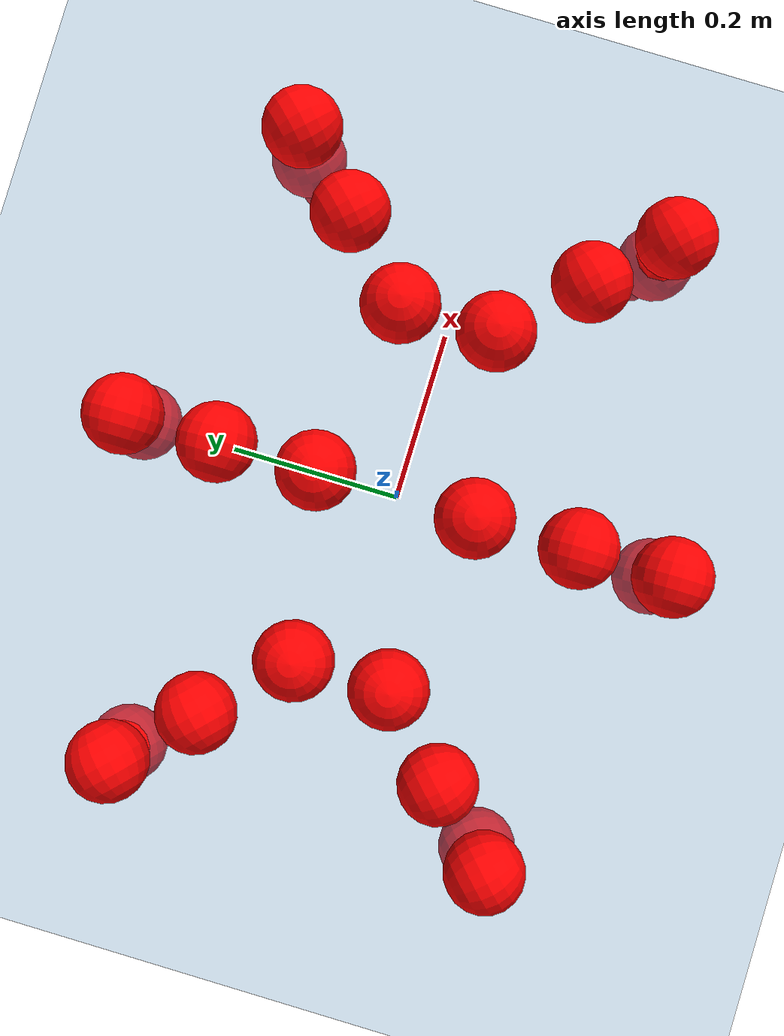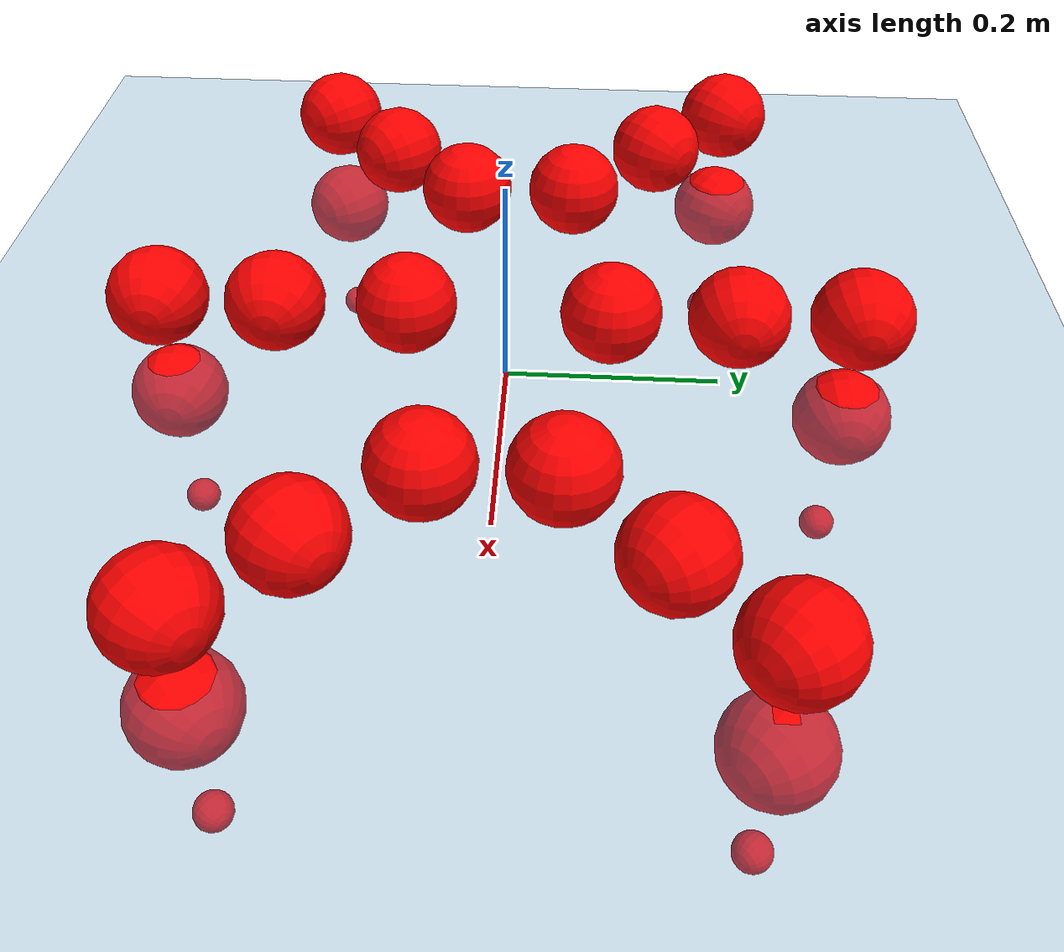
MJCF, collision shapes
<mujoco model="Golem">
  <compiler angle="radian" assetdir="assets" balanceinertia="true" inertiafromgeom="false"/>

  <option timestep="0.005" density="1.2" viscosity="2e-05"/>

  <size nkey="1"/>

  <visual>
    <quality shadowsize="8192"/>
    <map shadowclip="0.5"/>
  </visual>

  <default>
    <default class="/">
      <joint armature="0.01" damping="0.01" frictionloss="0.01"/>
      <geom contype="0" conaffinity="0" group="1" solref="-1000 -80"/>
      <site size="0.01 0.005 0.005" group="5"/>
      <general forcelimited="true" biastype="affine" gainprm="25" biasprm="0 -25 -0.5"/>
      <default class="visual">
        <geom type="mesh" group="2"/>
      </default>
      <default class="collision">
        <geom group="3"/>
      </default>
      <default class="foot">
        <geom size="0.01 0 0" condim="6" group="4" priority="1" solimp="0.015 1 0.01"/>
      </default>
      <default class="reward_collision_sphere">
        <geom group="5" rgba="1 0 0 1"/>
      </default>
    </default>
  </default>

  <asset>
    <texture type="skybox" colorspace="auto" name="//unnamed_texture_0" builtin="gradient" rgb1="0.95 0.95 0.95" rgb2="0.95 0.95 0.95" width="100" height="600"/>
    <texture type="2d" colorspace="auto" name="texplane" builtin="checker" rgb1="0.345 0.575 0.748" rgb2="0.345 0.575 0.748" markrgb="1 1 1" width="512" height="512"/>
    <material name="MatPlane" class="/" texture="texplane" texuniform="true" texrepeat="2 2" specular="0.9"/>
    <mesh name="body" class="/" file="body.stl" scale="0.001 0.001 0.001"/>
    <mesh name="coxa" class="/" file="coxa.stl" scale="0.001 0.001 0.001"/>
    <mesh name="femur" class="/" file="femur.stl" scale="0.001 0.001 0.001"/>
    <mesh name="tibia" class="/" file="tibia.stl" scale="0.001 0.001 0.001"/>
    <mesh name="tarsus" class="/" file="tarsus.stl" scale="0.001 0.001 0.001"/>
  </asset>

  <worldbody>
    <geom name="floor" class="/" size="100 100 0.125" type="plane" group="0" material="MatPlane"/>
    <light name="toplight_shadow" class="/" pos="0 0 5" dir="0.0990148 0.0990148 -0.990148" type="directional" ambient="0.04 0.04 0.04" diffuse="0.55 0.55 0.55" specular="0.12 0.12 0.12"/>
    <light name="toplight_fill" class="/" pos="0 0 5" dir="0.0990148 0.0990148 -0.990148" type="directional" castshadow="false" ambient="0.04 0.04 0.04" diffuse="0.3 0.3 0.3" specular="0.08 0.08 0.08"/>
    <body name="trunk" pos="-0.000218211 0.00254584 0.00270128" quat="1 0.000124128 5.48243e-05 3.53598e-05">
      <inertial pos="0.00249818 0.000858567 -0.00303773" quat="0.999988 -0.00490543 0.000698816 0.000124122" mass="5.95969" diaginertia="0.0419115 0.0112599 0.0180835"/>
      <joint name="//unnamed_joint_0" type="free"/>
      <geom name="//unnamed_geom_1" class="/" pos="0 0 0.0719028" quat="1 0 0 0" type="mesh" rgba="0.9 0.9 0.9 1" mesh="body"/>
      <site name="imu" class="/" pos="0.176337 0.00352851 0.123913" size="0.0116049"/>
      <camera name="track" class="/" pos="0 -2.0341 0" quat="0.707107 0.707107 0 0" mode="trackcom"/>
      <camera name="ego_camera" class="/" pos="0.174322 0 0.112348" quat="-0.5 -0.5 0.5 0.5"/>
      <body name="coxa_RR" pos="-0.238642 -0.0841887 0.0731298" quat="0.382573 -0.000307207 -8.41065e-06 -0.923925">
        <inertial pos="0.000275824 0.0007388 -0.00265542" quat="0.999949 -0.00532902 -0.00428383 -0.0073756" mass="0.320394" diaginertia="0.042897 0.0107821 0.0178013"/>
        <joint name="coxa_joint_RR" class="/" pos="0 0 0" axis="-0.000971808 -0.0104145 -0.999945" stiffness="0.00551062" range="-3.14828 3.14113" armature="0.0110257" damping="0" frictionloss="0.0117334"/>
        <geom name="//unnamed_geom_2" class="/" type="mesh" rgba="0.2 0.2 0.2 1" mesh="coxa"/>
        <geom name="//unnamed_geom_3" class="reward_collision_sphere" size="0.0464196" pos="-0.0402281 0 0"/>
        <body name="femur_RR" pos="0.079182 -0.00206582 -0.0057872" quat="0.499981 -0.500023 0.499746 0.500249">
          <inertial pos="-0.00282491 -0.00275429 0.000856966" quat="0.999929 0.00886616 0.00754418 0.00257884" mass="0.310626" diaginertia="0.0430178 0.0111447 0.0175169"/>
          <joint name="femur_joint_RR" class="/" pos="0 0 0" axis="-0.00920491 0.00701591 -0.999933" stiffness="0.00135778" range="-3.15517 3.09693" armature="0.0104294" damping="0.00407799" frictionloss="0.0122724"/>
          <geom name="//unnamed_geom_4" class="/" type="mesh" rgba="0.9 0.9 0.9 1" mesh="femur"/>
          <geom name="//unnamed_geom_5" class="reward_collision_sphere" size="0.0464196"/>
          <body name="tibia_RR" pos="-0.000955105 -0.109885 -0.000706375" quat="0.000291921 1 7.59176e-05 -0.000104773">
            <inertial pos="-0.00079405 -0.00150415 0.00106421" quat="0.999988 -0.00347505 -0.00279423 0.0020446" mass="0.308632" diaginertia="0.0420696 0.0102564 0.0168117"/>
            <joint name="tibia_joint_RR" class="/" pos="0 0 0" axis="-0.00304794 -0.00240972 0.999992" stiffness="0.0015333" range="-3.08346 3.18805" armature="0.0110685" damping="0.00157087" frictionloss="0.0116037"/>
            <geom name="//unnamed_geom_6" class="/" type="mesh" rgba="0.2 0.2 0.2 1" mesh="tibia"/>
            <geom name="//unnamed_geom_7" class="reward_collision_sphere" size="0.0464196"/>
            <body name="tarsus_RR" pos="0.119508 7.36564e-05 0.000601633" quat="1 -2.08153e-05 -1.35908e-05 -9.3066e-05">
              <inertial pos="0.0816741 0.000221339 0.00288673" quat="0.505477 0.491938 0.501208 0.501278" mass="0.312438" diaginertia="0.0440424 0.0111472 0.017796"/>
              <joint name="tarsus_joint_RR" class="/" pos="0 0 0" axis="4.53999e-05 -4.15668e-05 1" stiffness="0.00310438" range="-3.15578 3.18561" armature="0.0103726" damping="0.0350951" frictionloss="0.00998801"/>
              <geom name="//unnamed_geom_8" class="/" type="mesh" rgba="0.9 0.9 0.9 1" mesh="tarsus"/>
              <geom name="foot_1" class="foot" size="0.0113207" pos="0.150185 0 0" quat="0 -0.707107 0 0.707107"/>
              <geom name="//unnamed_geom_10" class="reward_collision_sphere" size="0.0464196"/>
              <geom name="//unnamed_geom_11" class="reward_collision_sphere" size="0.0174073" pos="0.144151 0 0"/>
              <site name="foot_1" class="foot" pos="0.150185 0 0" quat="0 -0.707107 0 0.707107" size="0.0116049"/>
            </body>
          </body>
        </body>
      </body>
      <body name="coxa_RM" pos="0.000799219 -0.133569 0.0754413" quat="0.707231 0.000666195 0.00107986 -0.706982">
        <inertial pos="0.00196159 -0.000259802 -0.00270176" quat="0.999902 0.00459597 0.00727508 0.011007" mass="0.299873" diaginertia="0.0416302 0.0108846 0.0182846"/>
        <joint name="coxa_joint_RM" class="/" pos="0 0 0" axis="0.00672703 0.00330734 -0.999972" range="-3.19343 3.16094" armature="0.0118789" damping="0.00662126" frictionloss="0.0125066"/>
        <geom name="//unnamed_geom_12" class="/" type="mesh" rgba="0.2 0.2 0.2 1" mesh="coxa"/>
        <geom name="//unnamed_geom_13" class="reward_collision_sphere" size="0.0464196" pos="-0.0402281 0 0"/>
        <body name="femur_RM" pos="0.0810829 0.00100354 -0.0017252" quat="0.500012 -0.500041 0.500007 0.49994">
          <inertial pos="0.0017468 -0.00291356 4.73408e-05" quat="0.999915 -0.010937 0.0060307 0.00383551" mass="0.313318" diaginertia="0.04305 0.010601 0.0176512"/>
          <joint name="femur_joint_RM" class="/" pos="0 0 0" axis="-0.0112858 0.00555853 -0.999921" stiffness="0.00562764" range="-3.14738 3.12906" armature="0.00999376" damping="0.0222758" frictionloss="0.011518"/>
          <geom name="//unnamed_geom_14" class="/" type="mesh" rgba="0.9 0.9 0.9 1" mesh="femur"/>
          <geom name="//unnamed_geom_15" class="reward_collision_sphere" size="0.0464196"/>
          <body name="tibia_RM" pos="-0.0008463 -0.109417 -0.000651461" quat="-5.12371e-05 1 -0.000344158 -0.000328926">
            <inertial pos="0.00219107 0.000525476 -0.00108477" quat="0.999996 0.00191797 -0.00112275 -0.00188728" mass="0.29924" diaginertia="0.0423217 0.0104084 0.0171255"/>
            <joint name="tibia_joint_RM" class="/" pos="0 0 0" axis="0.000792203 -0.00426893 0.999991" range="-3.15101 3.10904" armature="0.0113635" damping="0.0159365" frictionloss="0.0126215"/>
            <geom name="//unnamed_geom_16" class="/" type="mesh" rgba="0.2 0.2 0.2 1" mesh="tibia"/>
            <geom name="//unnamed_geom_17" class="reward_collision_sphere" size="0.0464196"/>
            <body name="tarsus_RM" pos="0.11617 -0.000300421 0.0024923" quat="1 4.58124e-05 -5.90982e-05 0.000166177">
              <inertial pos="0.0828117 -0.00199488 0.00184447" quat="0.501855 0.499472 0.498622 0.500045" mass="0.310833" diaginertia="0.0429356 0.0105326 0.0175477"/>
              <joint name="tarsus_joint_RM" class="/" pos="0 0 0" axis="0.00100531 0.0029452 0.999995" range="-3.09182 3.09456" armature="0.0131756" damping="0.00495153" frictionloss="0.0118641"/>
              <geom name="//unnamed_geom_18" class="/" type="mesh" rgba="0.9 0.9 0.9 1" mesh="tarsus"/>
              <geom name="foot_2" class="foot" size="0.0125487" pos="0.150185 0 0" quat="0 -0.707107 0 0.707107"/>
              <geom name="//unnamed_geom_20" class="reward_collision_sphere" size="0.0464196"/>
              <geom name="//unnamed_geom_21" class="reward_collision_sphere" size="0.0174073" pos="0.144151 0 0"/>
              <site name="foot_2" class="foot" pos="0.150185 0 0" quat="0 -0.707107 0 0.707107" size="0.0116049"/>
            </body>
          </body>
        </body>
      </body>
      <body name="coxa_RF" pos="0.238293 -0.0850625 0.0722061" quat="0.923878 -3.81706e-06 -2.62694e-06 -0.382686">
        <inertial pos="-0.00216529 0.00270129 -0.000948169" quat="1 -1.26276e-05 0.000688214 0.000135876" mass="0.316516" diaginertia="0.0435432 0.0113456 0.0174343"/>
        <joint name="coxa_joint_RF" class="/" pos="0 0 0" axis="0.00386124 -0.00374773 -0.999986" range="-3.16024 3.17728" armature="0.0122154" damping="0.0236715" frictionloss="0.0112102"/>
        <geom name="//unnamed_geom_22" class="/" type="mesh" rgba="0.2 0.2 0.2 1" mesh="coxa"/>
        <geom name="//unnamed_geom_23" class="reward_collision_sphere" size="0.0464196" pos="-0.0402281 0 0"/>
        <body name="femur_RF" pos="0.0811377 -0.00201691 0.00261983" quat="0.499813 -0.499234 0.501175 0.499775">
          <inertial pos="0.00281832 -0.00238938 -0.0010668" quat="0.999903 0.000781517 0.0117373 0.00744065" mass="0.302322" diaginertia="0.0433018 0.0101778 0.0173285"/>
          <joint name="femur_joint_RF" class="/" pos="0 0 0" axis="0.000217489 -0.00129402 -0.999999" range="-3.13056 3.18691" armature="0.0110026" damping="0.0151956" frictionloss="0.0125236"/>
          <geom name="//unnamed_geom_24" class="/" type="mesh" rgba="0.9 0.9 0.9 1" mesh="femur"/>
          <geom name="//unnamed_geom_25" class="reward_collision_sphere" size="0.0464196"/>
          <body name="tibia_RF" pos="-0.00117227 -0.107587 -0.00151072" quat="-0.00043643 1 -0.000116725 1.57077e-05">
            <inertial pos="0.000975377 0.000878241 -0.00158987" quat="0.999999 0.00022768 -0.00147099 5.66336e-06" mass="0.319643" diaginertia="0.0427984 0.0114306 0.0180758"/>
            <joint name="tibia_joint_RF" class="/" pos="0 0 0" axis="-0.000633284 -0.00293919 0.999995" stiffness="0.00311064" range="-3.18014 3.14975" armature="0.0101954" damping="0.00680229" frictionloss="0.0116975"/>
            <geom name="//unnamed_geom_26" class="/" type="mesh" rgba="0.2 0.2 0.2 1" mesh="tibia"/>
            <geom name="//unnamed_geom_27" class="reward_collision_sphere" size="0.0464196"/>
            <body name="tarsus_RF" pos="0.114956 -0.000297633 0.00149778" quat="1 -1.11103e-06 1.03595e-06 -5.2895e-08">
              <inertial pos="0.081001 0.00152725 -0.000614686" quat="0.502785 0.497747 0.497439 0.502006" mass="0.315328" diaginertia="0.0442022 0.0107451 0.0185717"/>
              <joint name="tarsus_joint_RF" class="/" pos="0 0 0" axis="-0.00923217 -0.0091202 0.999916" range="-3.1949 3.10034" armature="0.0129877" damping="0.00965915" frictionloss="0.0100069"/>
              <geom name="//unnamed_geom_28" class="/" type="mesh" rgba="0.9 0.9 0.9 1" mesh="tarsus"/>
              <geom name="foot_3" class="foot" size="0.0122555" pos="0.150185 0 0" quat="0 -0.707107 0 0.707107"/>
              <geom name="//unnamed_geom_30" class="reward_collision_sphere" size="0.0464196"/>
              <geom name="//unnamed_geom_31" class="reward_collision_sphere" size="0.0174073" pos="0.144151 0 0"/>
              <site name="foot_3" class="foot" pos="0.150185 0 0" quat="0 -0.707107 0 0.707107" size="0.0116049"/>
            </body>
          </body>
        </body>
      </body>
      <body name="coxa_LR" pos="-0.238028 0.0835948 0.0760687" quat="0.382788 5.78696e-05 -4.04406e-05 0.923836">
        <inertial pos="-7.63513e-05 0.00251841 0.00144778" quat="0.999996 0.000894149 0.000447639 0.00266397" mass="0.31144" diaginertia="0.0438474 0.010946 0.0188948"/>
        <joint name="coxa_joint_LR" class="/" pos="0 0 0" axis="0.00101857 0.000120407 -0.999999" stiffness="0.00898927" range="-3.1828 3.08484" armature="0.0101195" damping="0" frictionloss="0.0107903"/>
        <geom name="//unnamed_geom_32" class="/" type="mesh" rgba="0.2 0.2 0.2 1" mesh="coxa"/>
        <geom name="//unnamed_geom_33" class="reward_collision_sphere" size="0.0464196" pos="-0.0402281 0 0"/>
        <body name="femur_LR" pos="0.08179 -0.000926581 0.0026469" quat="0.499973 -0.500063 0.500057 0.499907">
          <inertial pos="-0.00255696 -0.000445586 0.00020307" quat="0.999911 0.00635323 -0.00567407 -0.0102339" mass="0.312261" diaginertia="0.0426253 0.0109352 0.0178113"/>
          <joint name="femur_joint_LR" class="/" pos="0 0 0" axis="0.00929955 -0.00805898 0.999924" stiffness="0.0039182" range="-3.09285 3.15286" armature="0.012427" damping="0" frictionloss="0.0121428"/>
          <geom name="//unnamed_geom_34" class="/" type="mesh" rgba="0.9 0.9 0.9 1" mesh="femur"/>
          <geom name="//unnamed_geom_35" class="reward_collision_sphere" size="0.0464196"/>
          <body name="tibia_LR" pos="-0.00159119 -0.11086 0.000474005" quat="1.41889e-05 1 0.000129836 0.000141836">
            <inertial pos="-0.000744078 -0.000718522 -0.000143941" quat="0.999991 -0.00141559 -0.000530299 -0.0040532" mass="0.33349" diaginertia="0.0443673 0.0109404 0.0184873"/>
            <joint name="tibia_joint_LR" class="/" pos="0 0 0" axis="-0.00754206 0.00976307 -0.999924" range="-3.19433 3.10996" armature="0.0118654" damping="0" frictionloss="0.0112733"/>
            <geom name="//unnamed_geom_36" class="/" type="mesh" rgba="0.2 0.2 0.2 1" mesh="tibia"/>
            <geom name="//unnamed_geom_37" class="reward_collision_sphere" size="0.0464196"/>
            <body name="tarsus_LR" pos="0.117412 0.0013618 0.00169679" quat="1 -2.94182e-07 -1.05898e-06 4.60276e-07">
              <inertial pos="0.0798112 0.000172932 0.000788618" quat="0.499937 0.499965 0.500242 0.499856" mass="0.312699" diaginertia="0.0447015 0.0109509 0.0185828"/>
              <joint name="tarsus_joint_LR" class="/" pos="0 0 0" axis="-0.00145678 -0.000855606 -0.999999" range="-3.16126 3.11766" armature="0.0114722" damping="0" frictionloss="0.0131197"/>
              <geom name="//unnamed_geom_38" class="/" type="mesh" rgba="0.9 0.9 0.9 1" mesh="tarsus"/>
              <geom name="foot_4" class="foot" size="0.0127789" pos="0.150185 0 0" quat="0.707107 0 -0.707107 0"/>
              <geom name="//unnamed_geom_40" class="reward_collision_sphere" size="0.0464196"/>
              <geom name="//unnamed_geom_41" class="reward_collision_sphere" size="0.0174073" pos="0.144151 0 0"/>
              <site name="foot_4" class="foot" pos="0.150185 0 0" quat="0.707107 0 -0.707107 0" size="0.0116049"/>
            </body>
          </body>
        </body>
      </body>
      <body name="coxa_LM" pos="0.00118945 0.133683 0.072783" quat="0.706032 -0.000125772 0.000611024 0.708179">
        <inertial pos="0.00251953 -0.00267526 -0.0011918" quat="0.999932 -0.0110034 0.00388819 -0.000460701" mass="0.302617" diaginertia="0.0405208 0.0105617 0.0172422"/>
        <joint name="coxa_joint_LM" class="/" pos="0 0 0" axis="-0.00302081 0.00236223 -0.999993" range="-3.11672 3.12359" armature="0.0131958" damping="0.0230429" frictionloss="0.0124447"/>
        <geom name="//unnamed_geom_42" class="/" type="mesh" rgba="0.2 0.2 0.2 1" mesh="coxa"/>
        <geom name="//unnamed_geom_43" class="reward_collision_sphere" size="0.0464196" pos="-0.0402281 0 0"/>
        <body name="femur_LM" pos="0.0756132 0.00103523 -0.000750083" quat="0.499501 -0.499677 0.500164 0.500657">
          <inertial pos="0.00283356 -0.00117102 -0.00106914" quat="1 0.000319377 -0.000256641 0.00069418" mass="0.321254" diaginertia="0.0460339 0.0113802 0.018996"/>
          <joint name="femur_joint_LM" class="/" pos="0 0 0" axis="0.00712167 -0.0103698 0.999921" stiffness="0.00741745" range="-3.1323 3.11172" armature="0.0129946" damping="0.00318627" frictionloss="0.0117398"/>
          <geom name="//unnamed_geom_44" class="/" type="mesh" rgba="0.9 0.9 0.9 1" mesh="femur"/>
          <geom name="//unnamed_geom_45" class="reward_collision_sphere" size="0.0464196"/>
          <body name="tibia_LM" pos="-0.00339543 -0.109509 -0.00054611" quat="0.000451638 1 -0.000178584 0.000203752">
            <inertial pos="0.00134134 0.000446227 0.00239212" quat="0.999935 0.00898265 0.00466145 -0.00517799" mass="0.302571" diaginertia="0.0447907 0.0109681 0.0184894"/>
            <joint name="tibia_joint_LM" class="/" pos="0 0 0" axis="-0.00407376 -0.00831589 -0.999957" range="-3.14656 3.18532" armature="0.011839" damping="0.0180119" frictionloss="0.0100325"/>
            <geom name="//unnamed_geom_46" class="/" type="mesh" rgba="0.2 0.2 0.2 1" mesh="tibia"/>
            <geom name="//unnamed_geom_47" class="reward_collision_sphere" size="0.0464196"/>
            <body name="tarsus_LM" pos="0.114389 0.000362175 0.00219726" quat="1 0.000472251 0.000352279 -0.000471491">
              <inertial pos="0.0782106 0.000951308 -0.00264797" quat="0.500032 0.499899 0.500313 0.499755" mass="0.325094" diaginertia="0.0423976 0.0107992 0.0185369"/>
              <joint name="tarsus_joint_LM" class="/" pos="0 0 0" axis="-0.00161521 0.00297683 -0.999994" stiffness="0.00666771" range="-3.15984 3.17496" armature="0.011965" damping="0.0169834" frictionloss="0.0132003"/>
              <geom name="//unnamed_geom_48" class="/" type="mesh" rgba="0.9 0.9 0.9 1" mesh="tarsus"/>
              <geom name="foot_5" class="foot" size="0.0129282" pos="0.150185 0 0" quat="0.707107 0 -0.707107 0"/>
              <geom name="//unnamed_geom_50" class="reward_collision_sphere" size="0.0464196"/>
              <geom name="//unnamed_geom_51" class="reward_collision_sphere" size="0.0174073" pos="0.144151 0 0"/>
              <site name="foot_5" class="foot" pos="0.150185 0 0" quat="0.707107 0 -0.707107 0" size="0.0116049"/>
            </body>
          </body>
        </body>
      </body>
      <body name="coxa_LF" pos="0.237814 0.0846653 0.0725523" quat="0.923954 9.94742e-05 -1.38521e-05 0.382503">
        <inertial pos="0.00063604 -0.000332859 -0.0026442" quat="0.999945 -0.00338376 -0.00992259 -0.000974803" mass="0.304057" diaginertia="0.0431673 0.0108826 0.0178791"/>
        <joint name="coxa_joint_LF" class="/" pos="0 0 0" axis="4.91702e-05 -0.00323913 -0.999995" stiffness="0.0263668" range="-3.19662 3.11893" armature="0.0119045" damping="0.019491" frictionloss="0.0103213"/>
        <geom name="//unnamed_geom_52" class="/" type="mesh" rgba="0.2 0.2 0.2 1" mesh="coxa"/>
        <geom name="//unnamed_geom_53" class="reward_collision_sphere" size="0.0464196" pos="-0.0402281 0 0"/>
        <body name="femur_LF" pos="0.0793583 4.32645e-05 -0.000408115" quat="0.500017 -0.500006 0.499996 0.499982">
          <inertial pos="-0.000788085 0.000473739 -0.000655437" quat="0.999945 -0.00304352 -0.00319112 -0.00949468" mass="0.299408" diaginertia="0.0423095 0.0106681 0.0168821"/>
          <joint name="femur_joint_LF" class="/" pos="0 0 0" axis="0.00380264 0.000833114 0.999992" range="-3.09129 3.16592" armature="0.0120427" damping="0.00886378" frictionloss="0.0104659"/>
          <geom name="//unnamed_geom_54" class="/" type="mesh" rgba="0.9 0.9 0.9 1" mesh="femur"/>
          <geom name="//unnamed_geom_55" class="reward_collision_sphere" size="0.0464196"/>
          <body name="tibia_LF" pos="-0.000877528 -0.110407 0.00221508" quat="2.60504e-05 1 -0.000157454 6.83241e-06">
            <inertial pos="0.000274368 0.00185089 0.00279235" quat="0.999938 -0.00635769 -0.00142032 0.00903079" mass="0.300891" diaginertia="0.0420107 0.0107873 0.0179636"/>
            <joint name="tibia_joint_LF" class="/" pos="0 0 0" axis="0.00118099 0.00191446 -0.999997" range="-3.13459 3.12952" armature="0.0100687" damping="0" frictionloss="0.0132027"/>
            <geom name="//unnamed_geom_56" class="/" type="mesh" rgba="0.2 0.2 0.2 1" mesh="tibia"/>
            <geom name="//unnamed_geom_57" class="reward_collision_sphere" size="0.0464196"/>
            <body name="tarsus_LF" pos="0.121185 0.00107182 0.000309676" quat="1 -4.17095e-06 5.529e-05 -3.61349e-05">
              <inertial pos="0.082151 -0.000638783 -0.00277027" quat="0.500364 0.493618 0.507115 0.49881" mass="0.332075" diaginertia="0.0442385 0.0113826 0.0190307"/>
              <joint name="tarsus_joint_LF" class="/" pos="0 0 0" axis="-0.0124311 0.00660398 -0.999901" stiffness="0.0317667" range="-3.17182 3.1934" armature="0.0114261" damping="0.0208536" frictionloss="0.0119457"/>
              <geom name="//unnamed_geom_58" class="/" type="mesh" rgba="0.9 0.9 0.9 1" mesh="tarsus"/>
              <geom name="foot_6" class="foot" size="0.0117823" pos="0.150185 0 0" quat="0.707107 0 -0.707107 0"/>
              <geom name="//unnamed_geom_60" class="reward_collision_sphere" size="0.0464196"/>
              <geom name="//unnamed_geom_61" class="reward_collision_sphere" size="0.0174073" pos="0.144151 0 0"/>
              <site name="foot_6" class="foot" pos="0.150185 0 0" quat="0.707107 0 -0.707107 0" size="0.0116049"/>
            </body>
          </body>
        </body>
      </body>
    </body>
  </worldbody>

  <contact>
    <pair class="/" geom1="floor" geom2="foot_1" name="//unnamed_contact_0"/>
    <pair class="/" geom1="floor" geom2="foot_2" name="//unnamed_contact_1"/>
    <pair class="/" geom1="floor" geom2="foot_3" name="//unnamed_contact_2"/>
    <pair class="/" geom1="floor" geom2="foot_4" name="//unnamed_contact_3"/>
    <pair class="/" geom1="floor" geom2="foot_5" name="//unnamed_contact_4"/>
    <pair class="/" geom1="floor" geom2="foot_6" name="//unnamed_contact_5"/>
  </contact>

  <actuator>
    <general name="coxa_joint_RR" class="/" joint="coxa_joint_RR" forcerange="-8.44404 8.44404" gainprm="27.6293" biasprm="0 -27.6293 -0.585703"/>
    <general name="femur_joint_RR" class="/" joint="femur_joint_RR" forcerange="-8.3762 8.3762" gainprm="27.6293" biasprm="0 -27.6293 -0.585703"/>
    <general name="tibia_joint_RR" class="/" joint="tibia_joint_RR" forcerange="-8.42927 8.42927" gainprm="27.6293" biasprm="0 -27.6293 -0.585703"/>
    <general name="tarsus_joint_RR" class="/" joint="tarsus_joint_RR" forcerange="-9.01236 9.01236" gainprm="27.6293" biasprm="0 -27.6293 -0.585703"/>
    <general name="coxa_joint_RM" class="/" joint="coxa_joint_RM" forcerange="-8.64961 8.64961" gainprm="27.6293" biasprm="0 -27.6293 -0.585703"/>
    <general name="femur_joint_RM" class="/" joint="femur_joint_RM" forcerange="-8.02622 8.02622" gainprm="27.6293" biasprm="0 -27.6293 -0.585703"/>
    <general name="tibia_joint_RM" class="/" joint="tibia_joint_RM" forcerange="-7.69318 7.69318" gainprm="27.6293" biasprm="0 -27.6293 -0.585703"/>
    <general name="tarsus_joint_RM" class="/" joint="tarsus_joint_RM" forcerange="-8.39258 8.39258" gainprm="27.6293" biasprm="0 -27.6293 -0.585703"/>
    <general name="coxa_joint_RF" class="/" joint="coxa_joint_RF" forcerange="-8.45883 8.45883" gainprm="27.6293" biasprm="0 -27.6293 -0.585703"/>
    <general name="femur_joint_RF" class="/" joint="femur_joint_RF" forcerange="-7.62433 7.62433" gainprm="27.6293" biasprm="0 -27.6293 -0.585703"/>
    <general name="tibia_joint_RF" class="/" joint="tibia_joint_RF" forcerange="-8.77992 8.77992" gainprm="27.6293" biasprm="0 -27.6293 -0.585703"/>
    <general name="tarsus_joint_RF" class="/" joint="tarsus_joint_RF" forcerange="-9.34103 9.34103" gainprm="27.6293" biasprm="0 -27.6293 -0.585703"/>
    <general name="coxa_joint_LR" class="/" joint="coxa_joint_LR" forcerange="-8.45766 8.45766" gainprm="27.6293" biasprm="0 -27.6293 -0.585703"/>
    <general name="femur_joint_LR" class="/" joint="femur_joint_LR" forcerange="-8.17438 8.17438" gainprm="27.6293" biasprm="0 -27.6293 -0.585703"/>
    <general name="tibia_joint_LR" class="/" joint="tibia_joint_LR" forcerange="-8.77509 8.77509" gainprm="27.6293" biasprm="0 -27.6293 -0.585703"/>
    <general name="tarsus_joint_LR" class="/" joint="tarsus_joint_LR" forcerange="-9.30328 9.30328" gainprm="27.6293" biasprm="0 -27.6293 -0.585703"/>
    <general name="coxa_joint_LM" class="/" joint="coxa_joint_LM" forcerange="-8.85622 8.85622" gainprm="27.6293" biasprm="0 -27.6293 -0.585703"/>
    <general name="femur_joint_LM" class="/" joint="femur_joint_LM" forcerange="-8.44159 8.44159" gainprm="27.6293" biasprm="0 -27.6293 -0.585703"/>
    <general name="tibia_joint_LM" class="/" joint="tibia_joint_LM" forcerange="-8.58837 8.58837" gainprm="27.6293" biasprm="0 -27.6293 -0.585703"/>
    <general name="tarsus_joint_LM" class="/" joint="tarsus_joint_LM" forcerange="-8.17777 8.17777" gainprm="27.6293" biasprm="0 -27.6293 -0.585703"/>
    <general name="coxa_joint_LF" class="/" joint="coxa_joint_LF" forcerange="-8.85771 8.85771" gainprm="27.6293" biasprm="0 -27.6293 -0.585703"/>
    <general name="femur_joint_LF" class="/" joint="femur_joint_LF" forcerange="-8.19138 8.19138" gainprm="27.6293" biasprm="0 -27.6293 -0.585703"/>
    <general name="tibia_joint_LF" class="/" joint="tibia_joint_LF" forcerange="-9.00101 9.00101" gainprm="27.6293" biasprm="0 -27.6293 -0.585703"/>
    <general name="tarsus_joint_LF" class="/" joint="tarsus_joint_LF" forcerange="-7.62664 7.62664" gainprm="27.6293" biasprm="0 -27.6293 -0.585703"/>
  </actuator>

  <sensor>
    <gyro site="imu" name="imu_angular_velocity"/>
    <velocimeter site="imu" name="imu_linear_velocity"/>
    <framelinvel objtype="site" objname="foot_1" name="foot_1_global_linear_velocity"/>
    <framelinvel objtype="site" objname="foot_2" name="foot_2_global_linear_velocity"/>
    <framelinvel objtype="site" objname="foot_3" name="foot_3_global_linear_velocity"/>
    <framelinvel objtype="site" objname="foot_4" name="foot_4_global_linear_velocity"/>
    <framelinvel objtype="site" objname="foot_5" name="foot_5_global_linear_velocity"/>
    <framelinvel objtype="site" objname="foot_6" name="foot_6_global_linear_velocity"/>
  </sensor>

  <keyframe>
    <key name="home" qpos="0 0 0.1457 1 0 0 0 0 0 0 0 0 0 0 0 0 0 0 0 0 0 0 0 0 0 0 0 0 0 0 0"/>
  </keyframe>
</mujoco>
